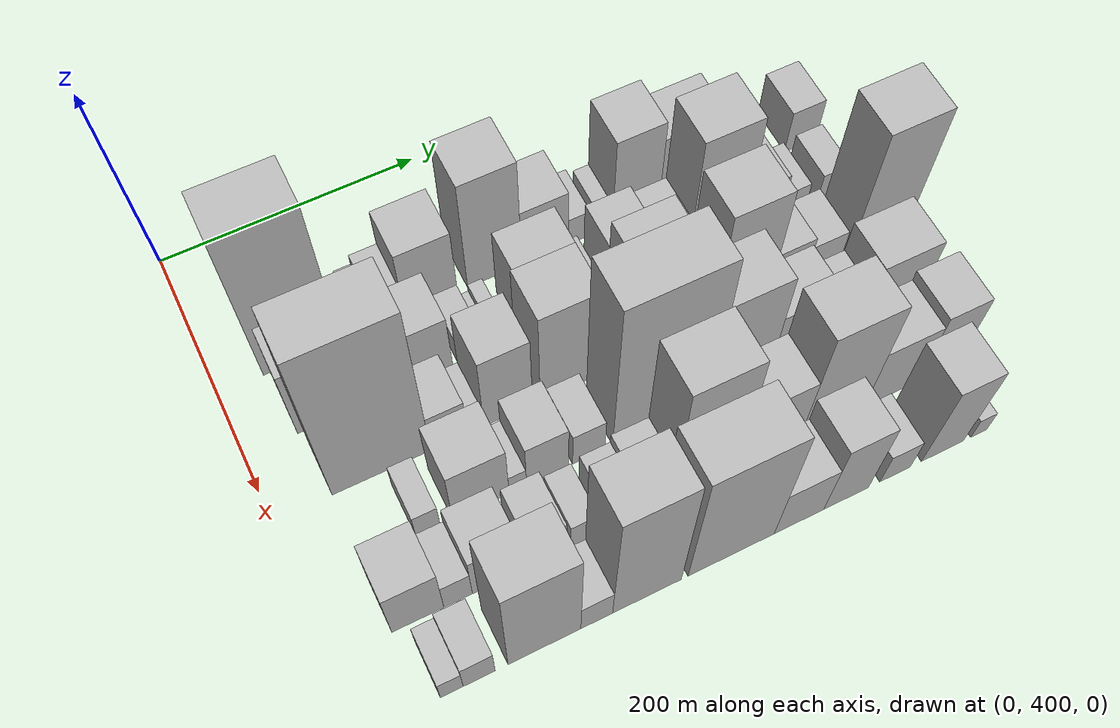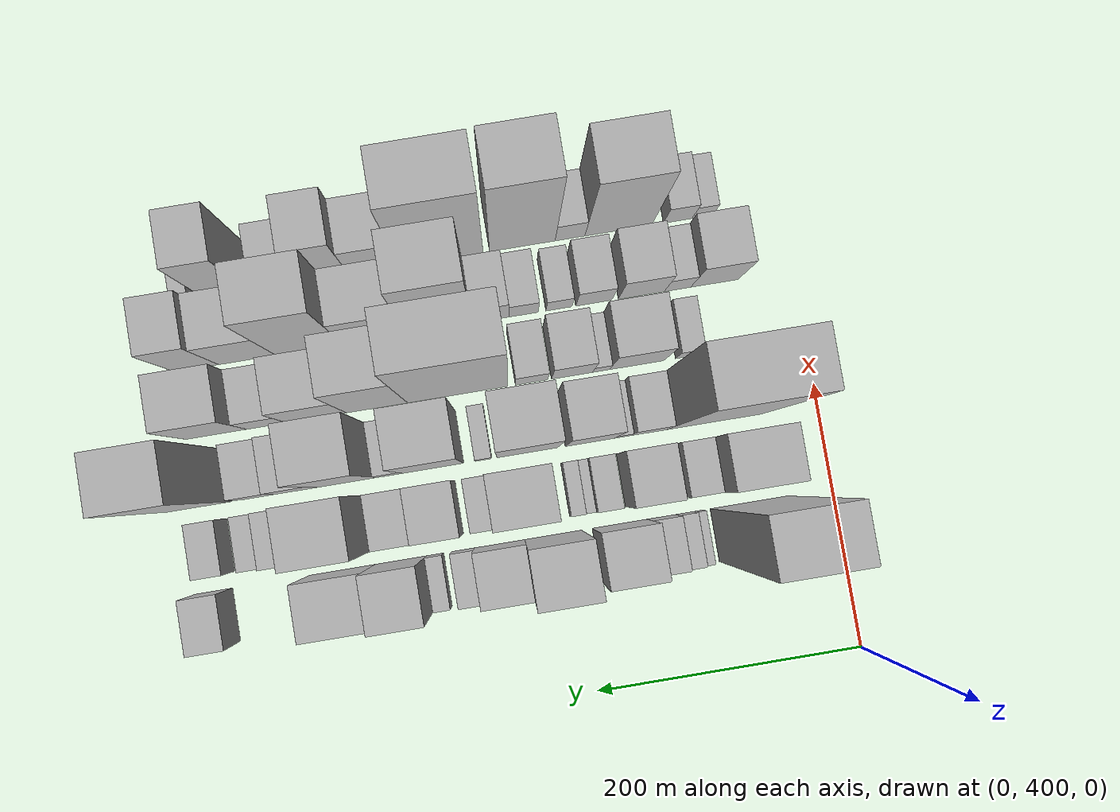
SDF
<sdf version="1.6">
 <world name="default">
  <model name="building_38">
   <static>1</static>
   <pose>100.0000 463.9945 0 0.000000 0.000000 0.000000</pose>
   <link name="link">
    <pose>0 0 90.00 0 0 0</pose>
    <collision name="collision"><geometry><box><size>40.0000 59.3825 180.0000</size></box></geometry></collision>
    <visual name="visual">
     <cast_shadows>0</cast_shadows>
     <geometry><box><size>40.0000 59.3825 180.0000</size></box></geometry>
     <material>
      <script>
       <uri>model://HANNAS_wall/materials/scripts</uri>
       <uri>model://HANNAS_wall/materials/textures</uri>
       <name>vrc/HANNAS_wall</name>
      </script>
     </material>
    </visual>
   </link>
  </model>
  <model name="building_39">
   <static>1</static>
   <pose>100.0000 503.4746 0 0.000000 0.000000 0.000000</pose>
   <link name="link">
    <pose>0 0 9.00 0 0 0</pose>
    <collision name="collision"><geometry><box><size>40.0000 7.5776 18.0000</size></box></geometry></collision>
    <visual name="visual">
     <cast_shadows>0</cast_shadows>
     <geometry><box><size>40.0000 7.5776 18.0000</size></box></geometry>
     <material>
      <script>
       <uri>model://HANNAS_wall/materials/scripts</uri>
       <uri>model://HANNAS_wall/materials/textures</uri>
       <name>vrc/HANNAS_wall</name>
      </script>
     </material>
    </visual>
   </link>
  </model>
  <model name="building_40">
   <static>1</static>
   <pose>100.0000 514.0020 0 0.000000 0.000000 0.000000</pose>
   <link name="link">
    <pose>0 0 13.50 0 0 0</pose>
    <collision name="collision"><geometry><box><size>40.0000 13.4772 27.0000</size></box></geometry></collision>
    <visual name="visual">
     <cast_shadows>0</cast_shadows>
     <geometry><box><size>40.0000 13.4772 27.0000</size></box></geometry>
     <material>
      <script>
       <uri>model://HANNAS_wall/materials/scripts</uri>
       <uri>model://HANNAS_wall/materials/textures</uri>
       <name>vrc/HANNAS_wall</name>
      </script>
     </material>
    </visual>
   </link>
  </model>
  <model name="building_41">
   <static>1</static>
   <pose>100.0000 531.4164 0 0.000000 0.000000 0.000000</pose>
   <link name="link">
    <pose>0 0 19.50 0 0 0</pose>
    <collision name="collision"><geometry><box><size>40.0000 21.3515 39.0000</size></box></geometry></collision>
    <visual name="visual">
     <cast_shadows>0</cast_shadows>
     <geometry><box><size>40.0000 21.3515 39.0000</size></box></geometry>
     <material>
      <script>
       <uri>model://HANNAS_wall/materials/scripts</uri>
       <uri>model://HANNAS_wall/materials/textures</uri>
       <name>vrc/HANNAS_wall</name>
      </script>
     </material>
    </visual>
   </link>
  </model>
  <model name="building_42">
   <static>1</static>
   <pose>100.0000 562.9155 0 0.000000 0.000000 0.000000</pose>
   <link name="link">
    <pose>0 0 40.50 0 0 0</pose>
    <collision name="collision"><geometry><box><size>40.0000 41.6467 81.0000</size></box></geometry></collision>
    <visual name="visual">
     <cast_shadows>0</cast_shadows>
     <geometry><box><size>40.0000 41.6467 81.0000</size></box></geometry>
     <material>
      <script>
       <uri>model://HANNAS_wall/materials/scripts</uri>
       <uri>model://HANNAS_wall/materials/textures</uri>
       <name>vrc/HANNAS_wall</name>
      </script>
     </material>
    </visual>
   </link>
  </model>
  <model name="building_43">
   <static>1</static>
   <pose>100.0000 613.4535 0 0.000000 0.000000 0.000000</pose>
   <link name="link">
    <pose>0 0 66.00 0 0 0</pose>
    <collision name="collision"><geometry><box><size>40.0000 43.4293 132.0000</size></box></geometry></collision>
    <visual name="visual">
     <cast_shadows>0</cast_shadows>
     <geometry><box><size>40.0000 43.4293 132.0000</size></box></geometry>
     <material>
      <script>
       <uri>model://HANNAS_wall/materials/scripts</uri>
       <uri>model://HANNAS_wall/materials/textures</uri>
       <name>vrc/HANNAS_wall</name>
      </script>
     </material>
    </visual>
   </link>
  </model>
  <model name="building_44">
   <static>1</static>
   <pose>100.0000 654.1920 0 0.000000 0.000000 0.000000</pose>
   <link name="link">
    <pose>0 0 34.50 0 0 0</pose>
    <collision name="collision"><geometry><box><size>40.0000 38.0477 69.0000</size></box></geometry></collision>
    <visual name="visual">
     <cast_shadows>0</cast_shadows>
     <geometry><box><size>40.0000 38.0477 69.0000</size></box></geometry>
     <material>
      <script>
       <uri>model://HANNAS_wall/materials/scripts</uri>
       <uri>model://HANNAS_wall/materials/textures</uri>
       <name>vrc/HANNAS_wall</name>
      </script>
     </material>
    </visual>
   </link>
  </model>
  <model name="building_45">
   <static>1</static>
   <pose>100.0000 681.9633 0 0.000000 0.000000 0.000000</pose>
   <link name="link">
    <pose>0 0 16.50 0 0 0</pose>
    <collision name="collision"><geometry><box><size>40.0000 17.4950 33.0000</size></box></geometry></collision>
    <visual name="visual">
     <cast_shadows>0</cast_shadows>
     <geometry><box><size>40.0000 17.4950 33.0000</size></box></geometry>
     <material>
      <script>
       <uri>model://HANNAS_wall/materials/scripts</uri>
       <uri>model://HANNAS_wall/materials/textures</uri>
       <name>vrc/HANNAS_wall</name>
      </script>
     </material>
    </visual>
   </link>
  </model>
  <model name="building_46">
   <static>1</static>
   <pose>100.0000 703.1020 0 0.000000 0.000000 0.000000</pose>
   <link name="link">
    <pose>0 0 13.50 0 0 0</pose>
    <collision name="collision"><geometry><box><size>40.0000 12.7823 27.0000</size></box></geometry></collision>
    <visual name="visual">
     <cast_shadows>0</cast_shadows>
     <geometry><box><size>40.0000 12.7823 27.0000</size></box></geometry>
     <material>
      <script>
       <uri>model://HANNAS_wall/materials/scripts</uri>
       <uri>model://HANNAS_wall/materials/textures</uri>
       <name>vrc/HANNAS_wall</name>
      </script>
     </material>
    </visual>
   </link>
  </model>
  <model name="building_47">
   <static>1</static>
   <pose>100.0000 728.9406 0 0.000000 0.000000 0.000000</pose>
   <link name="link">
    <pose>0 0 52.50 0 0 0</pose>
    <collision name="collision"><geometry><box><size>40.0000 38.8948 105.0000</size></box></geometry></collision>
    <visual name="visual">
     <cast_shadows>0</cast_shadows>
     <geometry><box><size>40.0000 38.8948 105.0000</size></box></geometry>
     <material>
      <script>
       <uri>model://HANNAS_wall/materials/scripts</uri>
       <uri>model://HANNAS_wall/materials/textures</uri>
       <name>vrc/HANNAS_wall</name>
      </script>
     </material>
    </visual>
   </link>
  </model>
  <model name="building_48">
   <static>1</static>
   <pose>100.0000 773.1806 0 0.000000 0.000000 0.000000</pose>
   <link name="link">
    <pose>0 0 42.00 0 0 0</pose>
    <collision name="collision"><geometry><box><size>40.0000 49.5852 84.0000</size></box></geometry></collision>
    <visual name="visual">
     <cast_shadows>0</cast_shadows>
     <geometry><box><size>40.0000 49.5852 84.0000</size></box></geometry>
     <material>
      <script>
       <uri>model://HANNAS_wall/materials/scripts</uri>
       <uri>model://HANNAS_wall/materials/textures</uri>
       <name>vrc/HANNAS_wall</name>
      </script>
     </material>
    </visual>
   </link>
  </model>
  <model name="building_49">
   <static>1</static>
   <pose>100.0000 870.8977 0 0.000000 0.000000 0.000000</pose>
   <link name="link">
    <pose>0 0 24.00 0 0 0</pose>
    <collision name="collision"><geometry><box><size>40.0000 27.9497 48.0000</size></box></geometry></collision>
    <visual name="visual">
     <cast_shadows>0</cast_shadows>
     <geometry><box><size>40.0000 27.9497 48.0000</size></box></geometry>
     <material>
      <script>
       <uri>model://HANNAS_wall/materials/scripts</uri>
       <uri>model://HANNAS_wall/materials/textures</uri>
       <name>vrc/HANNAS_wall</name>
      </script>
     </material>
    </visual>
   </link>
  </model>
  <model name="building_87">
   <static>1</static>
   <pose>152.0000 464.3282 0 0.000000 0.000000 0.000000</pose>
   <link name="link">
    <pose>0 0 43.50 0 0 0</pose>
    <collision name="collision"><geometry><box><size>40.0000 49.8847 87.0000</size></box></geometry></collision>
    <visual name="visual">
     <cast_shadows>0</cast_shadows>
     <geometry><box><size>40.0000 49.8847 87.0000</size></box></geometry>
     <material>
      <script>
       <uri>model://HANNAS_wall/materials/scripts</uri>
       <uri>model://HANNAS_wall/materials/textures</uri>
       <name>vrc/HANNAS_wall</name>
      </script>
     </material>
    </visual>
   </link>
  </model>
  <model name="building_88">
   <static>1</static>
   <pose>152.0000 501.3196 0 0.000000 0.000000 0.000000</pose>
   <link name="link">
    <pose>0 0 22.50 0 0 0</pose>
    <collision name="collision"><geometry><box><size>40.0000 24.0981 45.0000</size></box></geometry></collision>
    <visual name="visual">
     <cast_shadows>0</cast_shadows>
     <geometry><box><size>40.0000 24.0981 45.0000</size></box></geometry>
     <material>
      <script>
       <uri>model://HANNAS_wall/materials/scripts</uri>
       <uri>model://HANNAS_wall/materials/textures</uri>
       <name>vrc/HANNAS_wall</name>
      </script>
     </material>
    </visual>
   </link>
  </model>
  <model name="building_89">
   <static>1</static>
   <pose>152.0000 538.3576 0 0.000000 0.000000 0.000000</pose>
   <link name="link">
    <pose>0 0 34.50 0 0 0</pose>
    <collision name="collision"><geometry><box><size>40.0000 35.9779 69.0000</size></box></geometry></collision>
    <visual name="visual">
     <cast_shadows>0</cast_shadows>
     <geometry><box><size>40.0000 35.9779 69.0000</size></box></geometry>
     <material>
      <script>
       <uri>model://HANNAS_wall/materials/scripts</uri>
       <uri>model://HANNAS_wall/materials/textures</uri>
       <name>vrc/HANNAS_wall</name>
      </script>
     </material>
    </visual>
   </link>
  </model>
  <model name="building_90">
   <static>1</static>
   <pose>152.0000 570.0254 0 0.000000 0.000000 0.000000</pose>
   <link name="link">
    <pose>0 0 16.50 0 0 0</pose>
    <collision name="collision"><geometry><box><size>40.0000 19.3577 33.0000</size></box></geometry></collision>
    <visual name="visual">
     <cast_shadows>0</cast_shadows>
     <geometry><box><size>40.0000 19.3577 33.0000</size></box></geometry>
     <material>
      <script>
       <uri>model://HANNAS_wall/materials/scripts</uri>
       <uri>model://HANNAS_wall/materials/textures</uri>
       <name>vrc/HANNAS_wall</name>
      </script>
     </material>
    </visual>
   </link>
  </model>
  <model name="building_91">
   <static>1</static>
   <pose>152.0000 583.7149 0 0.000000 0.000000 0.000000</pose>
   <link name="link">
    <pose>0 0 9.00 0 0 0</pose>
    <collision name="collision"><geometry><box><size>40.0000 8.0212 18.0000</size></box></geometry></collision>
    <visual name="visual">
     <cast_shadows>0</cast_shadows>
     <geometry><box><size>40.0000 8.0212 18.0000</size></box></geometry>
     <material>
      <script>
       <uri>model://HANNAS_wall/materials/scripts</uri>
       <uri>model://HANNAS_wall/materials/textures</uri>
       <name>vrc/HANNAS_wall</name>
      </script>
     </material>
    </visual>
   </link>
  </model>
  <model name="building_92">
   <static>1</static>
   <pose>152.0000 593.3504 0 0.000000 0.000000 0.000000</pose>
   <link name="link">
    <pose>0 0 13.50 0 0 0</pose>
    <collision name="collision"><geometry><box><size>40.0000 11.2499 27.0000</size></box></geometry></collision>
    <visual name="visual">
     <cast_shadows>0</cast_shadows>
     <geometry><box><size>40.0000 11.2499 27.0000</size></box></geometry>
     <material>
      <script>
       <uri>model://HANNAS_wall/materials/scripts</uri>
       <uri>model://HANNAS_wall/materials/textures</uri>
       <name>vrc/HANNAS_wall</name>
      </script>
     </material>
    </visual>
   </link>
  </model>
  <model name="building_93">
   <static>1</static>
   <pose>152.0000 632.6060 0 0.000000 0.000000 0.000000</pose>
   <link name="link">
    <pose>0 0 40.50 0 0 0</pose>
    <collision name="collision"><geometry><box><size>40.0000 47.2612 81.0000</size></box></geometry></collision>
    <visual name="visual">
     <cast_shadows>0</cast_shadows>
     <geometry><box><size>40.0000 47.2612 81.0000</size></box></geometry>
     <material>
      <script>
       <uri>model://HANNAS_wall/materials/scripts</uri>
       <uri>model://HANNAS_wall/materials/textures</uri>
       <name>vrc/HANNAS_wall</name>
      </script>
     </material>
    </visual>
   </link>
  </model>
  <model name="building_94">
   <static>1</static>
   <pose>152.0000 664.9774 0 0.000000 0.000000 0.000000</pose>
   <link name="link">
    <pose>0 0 15.00 0 0 0</pose>
    <collision name="collision"><geometry><box><size>40.0000 17.4816 30.0000</size></box></geometry></collision>
    <visual name="visual">
     <cast_shadows>0</cast_shadows>
     <geometry><box><size>40.0000 17.4816 30.0000</size></box></geometry>
     <material>
      <script>
       <uri>model://HANNAS_wall/materials/scripts</uri>
       <uri>model://HANNAS_wall/materials/textures</uri>
       <name>vrc/HANNAS_wall</name>
      </script>
     </material>
    </visual>
   </link>
  </model>
  <model name="building_95">
   <static>1</static>
   <pose>152.0000 697.3945 0 0.000000 0.000000 0.000000</pose>
   <link name="link">
    <pose>0 0 33.00 0 0 0</pose>
    <collision name="collision"><geometry><box><size>40.0000 35.3527 66.0000</size></box></geometry></collision>
    <visual name="visual">
     <cast_shadows>0</cast_shadows>
     <geometry><box><size>40.0000 35.3527 66.0000</size></box></geometry>
     <material>
      <script>
       <uri>model://HANNAS_wall/materials/scripts</uri>
       <uri>model://HANNAS_wall/materials/textures</uri>
       <name>vrc/HANNAS_wall</name>
      </script>
     </material>
    </visual>
   </link>
  </model>
  <model name="building_96">
   <static>1</static>
   <pose>152.0000 729.4953 0 0.000000 0.000000 0.000000</pose>
   <link name="link">
    <pose>0 0 28.50 0 0 0</pose>
    <collision name="collision"><geometry><box><size>40.0000 28.8489 57.0000</size></box></geometry></collision>
    <visual name="visual">
     <cast_shadows>0</cast_shadows>
     <geometry><box><size>40.0000 28.8489 57.0000</size></box></geometry>
     <material>
      <script>
       <uri>model://HANNAS_wall/materials/scripts</uri>
       <uri>model://HANNAS_wall/materials/textures</uri>
       <name>vrc/HANNAS_wall</name>
      </script>
     </material>
    </visual>
   </link>
  </model>
  <model name="building_97">
   <static>1</static>
   <pose>152.0000 766.5316 0 0.000000 0.000000 0.000000</pose>
   <link name="link">
    <pose>0 0 75.00 0 0 0</pose>
    <collision name="collision"><geometry><box><size>40.0000 45.2237 150.0000</size></box></geometry></collision>
    <visual name="visual">
     <cast_shadows>0</cast_shadows>
     <geometry><box><size>40.0000 45.2237 150.0000</size></box></geometry>
     <material>
      <script>
       <uri>model://HANNAS_wall/materials/scripts</uri>
       <uri>model://HANNAS_wall/materials/textures</uri>
       <name>vrc/HANNAS_wall</name>
      </script>
     </material>
    </visual>
   </link>
  </model>
  <model name="building_98">
   <static>1</static>
   <pose>152.0000 805.8189 0 0.000000 0.000000 0.000000</pose>
   <link name="link">
    <pose>0 0 30.00 0 0 0</pose>
    <collision name="collision"><geometry><box><size>40.0000 33.3508 60.0000</size></box></geometry></collision>
    <visual name="visual">
     <cast_shadows>0</cast_shadows>
     <geometry><box><size>40.0000 33.3508 60.0000</size></box></geometry>
     <material>
      <script>
       <uri>model://HANNAS_wall/materials/scripts</uri>
       <uri>model://HANNAS_wall/materials/textures</uri>
       <name>vrc/HANNAS_wall</name>
      </script>
     </material>
    </visual>
   </link>
  </model>
  <model name="building_99">
   <static>1</static>
   <pose>152.0000 832.9193 0 0.000000 0.000000 0.000000</pose>
   <link name="link">
    <pose>0 0 18.00 0 0 0</pose>
    <collision name="collision"><geometry><box><size>40.0000 20.8501 36.0000</size></box></geometry></collision>
    <visual name="visual">
     <cast_shadows>0</cast_shadows>
     <geometry><box><size>40.0000 20.8501 36.0000</size></box></geometry>
     <material>
      <script>
       <uri>model://HANNAS_wall/materials/scripts</uri>
       <uri>model://HANNAS_wall/materials/textures</uri>
       <name>vrc/HANNAS_wall</name>
      </script>
     </material>
    </visual>
   </link>
  </model>
  <model name="building_100">
   <static>1</static>
   <pose>152.0000 864.4934 0 0.000000 0.000000 0.000000</pose>
   <link name="link">
    <pose>0 0 19.50 0 0 0</pose>
    <collision name="collision"><geometry><box><size>40.0000 22.2980 39.0000</size></box></geometry></collision>
    <visual name="visual">
     <cast_shadows>0</cast_shadows>
     <geometry><box><size>40.0000 22.2980 39.0000</size></box></geometry>
     <material>
      <script>
       <uri>model://HANNAS_wall/materials/scripts</uri>
       <uri>model://HANNAS_wall/materials/textures</uri>
       <name>vrc/HANNAS_wall</name>
      </script>
     </material>
    </visual>
   </link>
  </model>
  <model name="building_138">
   <static>1</static>
   <pose>204.0000 479.8969 0 0.000000 0.000000 0.000000</pose>
   <link name="link">
    <pose>0 0 100.50 0 0 0</pose>
    <collision name="collision"><geometry><box><size>40.0000 72.7157 201.0000</size></box></geometry></collision>
    <visual name="visual">
     <cast_shadows>0</cast_shadows>
     <geometry><box><size>40.0000 72.7157 201.0000</size></box></geometry>
     <material>
      <script>
       <uri>model://HANNAS_wall/materials/scripts</uri>
       <uri>model://HANNAS_wall/materials/textures</uri>
       <name>vrc/HANNAS_wall</name>
      </script>
     </material>
    </visual>
   </link>
  </model>
  <model name="building_139">
   <static>1</static>
   <pose>204.0000 530.0250 0 0.000000 0.000000 0.000000</pose>
   <link name="link">
    <pose>0 0 25.50 0 0 0</pose>
    <collision name="collision"><geometry><box><size>40.0000 27.5405 51.0000</size></box></geometry></collision>
    <visual name="visual">
     <cast_shadows>0</cast_shadows>
     <geometry><box><size>40.0000 27.5405 51.0000</size></box></geometry>
     <material>
      <script>
       <uri>model://HANNAS_wall/materials/scripts</uri>
       <uri>model://HANNAS_wall/materials/textures</uri>
       <name>vrc/HANNAS_wall</name>
      </script>
     </material>
    </visual>
   </link>
  </model>
  <model name="building_140">
   <static>1</static>
   <pose>204.0000 550.0132 0 0.000000 0.000000 0.000000</pose>
   <link name="link">
    <pose>0 0 13.50 0 0 0</pose>
    <collision name="collision"><geometry><box><size>40.0000 12.4360 27.0000</size></box></geometry></collision>
    <visual name="visual">
     <cast_shadows>0</cast_shadows>
     <geometry><box><size>40.0000 12.4360 27.0000</size></box></geometry>
     <material>
      <script>
       <uri>model://HANNAS_wall/materials/scripts</uri>
       <uri>model://HANNAS_wall/materials/textures</uri>
       <name>vrc/HANNAS_wall</name>
      </script>
     </material>
    </visual>
   </link>
  </model>
  <model name="building_141">
   <static>1</static>
   <pose>204.0000 574.8178 0 0.000000 0.000000 0.000000</pose>
   <link name="link">
    <pose>0 0 48.00 0 0 0</pose>
    <collision name="collision"><geometry><box><size>40.0000 37.1732 96.0000</size></box></geometry></collision>
    <visual name="visual">
     <cast_shadows>0</cast_shadows>
     <geometry><box><size>40.0000 37.1732 96.0000</size></box></geometry>
     <material>
      <script>
       <uri>model://HANNAS_wall/materials/scripts</uri>
       <uri>model://HANNAS_wall/materials/textures</uri>
       <name>vrc/HANNAS_wall</name>
      </script>
     </material>
    </visual>
   </link>
  </model>
  <model name="building_142">
   <static>1</static>
   <pose>204.0000 622.4602 0 0.000000 0.000000 0.000000</pose>
   <link name="link">
    <pose>0 0 60.00 0 0 0</pose>
    <collision name="collision"><geometry><box><size>40.0000 46.1114 120.0000</size></box></geometry></collision>
    <visual name="visual">
     <cast_shadows>0</cast_shadows>
     <geometry><box><size>40.0000 46.1114 120.0000</size></box></geometry>
     <material>
      <script>
       <uri>model://HANNAS_wall/materials/scripts</uri>
       <uri>model://HANNAS_wall/materials/textures</uri>
       <name>vrc/HANNAS_wall</name>
      </script>
     </material>
    </visual>
   </link>
  </model>
  <model name="building_143">
   <static>1</static>
   <pose>204.0000 655.7681 0 0.000000 0.000000 0.000000</pose>
   <link name="link">
    <pose>0 0 13.50 0 0 0</pose>
    <collision name="collision"><geometry><box><size>40.0000 12.5044 27.0000</size></box></geometry></collision>
    <visual name="visual">
     <cast_shadows>0</cast_shadows>
     <geometry><box><size>40.0000 12.5044 27.0000</size></box></geometry>
     <material>
      <script>
       <uri>model://HANNAS_wall/materials/scripts</uri>
       <uri>model://HANNAS_wall/materials/textures</uri>
       <name>vrc/HANNAS_wall</name>
      </script>
     </material>
    </visual>
   </link>
  </model>
  <model name="building_144">
   <static>1</static>
   <pose>204.0000 694.2369 0 0.000000 0.000000 0.000000</pose>
   <link name="link">
    <pose>0 0 63.00 0 0 0</pose>
    <collision name="collision"><geometry><box><size>40.0000 46.4333 126.0000</size></box></geometry></collision>
    <visual name="visual">
     <cast_shadows>0</cast_shadows>
     <geometry><box><size>40.0000 46.4333 126.0000</size></box></geometry>
     <material>
      <script>
       <uri>model://HANNAS_wall/materials/scripts</uri>
       <uri>model://HANNAS_wall/materials/textures</uri>
       <name>vrc/HANNAS_wall</name>
      </script>
     </material>
    </visual>
   </link>
  </model>
  <model name="building_145">
   <static>1</static>
   <pose>204.0000 727.0333 0 0.000000 0.000000 0.000000</pose>
   <link name="link">
    <pose>0 0 18.00 0 0 0</pose>
    <collision name="collision"><geometry><box><size>40.0000 19.1595 36.0000</size></box></geometry></collision>
    <visual name="visual">
     <cast_shadows>0</cast_shadows>
     <geometry><box><size>40.0000 19.1595 36.0000</size></box></geometry>
     <material>
      <script>
       <uri>model://HANNAS_wall/materials/scripts</uri>
       <uri>model://HANNAS_wall/materials/textures</uri>
       <name>vrc/HANNAS_wall</name>
      </script>
     </material>
    </visual>
   </link>
  </model>
  <model name="building_146">
   <static>1</static>
   <pose>204.0000 759.2634 0 0.000000 0.000000 0.000000</pose>
   <link name="link">
    <pose>0 0 70.50 0 0 0</pose>
    <collision name="collision"><geometry><box><size>40.0000 45.3006 141.0000</size></box></geometry></collision>
    <visual name="visual">
     <cast_shadows>0</cast_shadows>
     <geometry><box><size>40.0000 45.3006 141.0000</size></box></geometry>
     <material>
      <script>
       <uri>model://HANNAS_wall/materials/scripts</uri>
       <uri>model://HANNAS_wall/materials/textures</uri>
       <name>vrc/HANNAS_wall</name>
      </script>
     </material>
    </visual>
   </link>
  </model>
  <model name="building_147">
   <static>1</static>
   <pose>204.0000 797.0327 0 0.000000 0.000000 0.000000</pose>
   <link name="link">
    <pose>0 0 30.00 0 0 0</pose>
    <collision name="collision"><geometry><box><size>40.0000 30.2379 60.0000</size></box></geometry></collision>
    <visual name="visual">
     <cast_shadows>0</cast_shadows>
     <geometry><box><size>40.0000 30.2379 60.0000</size></box></geometry>
     <material>
      <script>
       <uri>model://HANNAS_wall/materials/scripts</uri>
       <uri>model://HANNAS_wall/materials/textures</uri>
       <name>vrc/HANNAS_wall</name>
      </script>
     </material>
    </visual>
   </link>
  </model>
  <model name="building_148">
   <static>1</static>
   <pose>204.0000 826.4240 0 0.000000 0.000000 0.000000</pose>
   <link name="link">
    <pose>0 0 24.00 0 0 0</pose>
    <collision name="collision"><geometry><box><size>40.0000 28.5447 48.0000</size></box></geometry></collision>
    <visual name="visual">
     <cast_shadows>0</cast_shadows>
     <geometry><box><size>40.0000 28.5447 48.0000</size></box></geometry>
     <material>
      <script>
       <uri>model://HANNAS_wall/materials/scripts</uri>
       <uri>model://HANNAS_wall/materials/textures</uri>
       <name>vrc/HANNAS_wall</name>
      </script>
     </material>
    </visual>
   </link>
  </model>
  <model name="building_149">
   <static>1</static>
   <pose>204.0000 871.9807 0 0.000000 0.000000 0.000000</pose>
   <link name="link">
    <pose>0 0 79.50 0 0 0</pose>
    <collision name="collision"><geometry><box><size>40.0000 48.5687 159.0000</size></box></geometry></collision>
    <visual name="visual">
     <cast_shadows>0</cast_shadows>
     <geometry><box><size>40.0000 48.5687 159.0000</size></box></geometry>
     <material>
      <script>
       <uri>model://HANNAS_wall/materials/scripts</uri>
       <uri>model://HANNAS_wall/materials/textures</uri>
       <name>vrc/HANNAS_wall</name>
      </script>
     </material>
    </visual>
   </link>
  </model>
  <model name="building_182">
   <static>1</static>
   <pose>256.0000 491.0594 0 0.000000 0.000000 0.000000</pose>
   <link name="link">
    <pose>0 0 16.50 0 0 0</pose>
    <collision name="collision"><geometry><box><size>40.0000 17.6833 33.0000</size></box></geometry></collision>
    <visual name="visual">
     <cast_shadows>0</cast_shadows>
     <geometry><box><size>40.0000 17.6833 33.0000</size></box></geometry>
     <material>
      <script>
       <uri>model://HANNAS_wall/materials/scripts</uri>
       <uri>model://HANNAS_wall/materials/textures</uri>
       <name>vrc/HANNAS_wall</name>
      </script>
     </material>
    </visual>
   </link>
  </model>
  <model name="building_183">
   <static>1</static>
   <pose>256.0000 529.7799 0 0.000000 0.000000 0.000000</pose>
   <link name="link">
    <pose>0 0 36.00 0 0 0</pose>
    <collision name="collision"><geometry><box><size>40.0000 41.7577 72.0000</size></box></geometry></collision>
    <visual name="visual">
     <cast_shadows>0</cast_shadows>
     <geometry><box><size>40.0000 41.7577 72.0000</size></box></geometry>
     <material>
      <script>
       <uri>model://HANNAS_wall/materials/scripts</uri>
       <uri>model://HANNAS_wall/materials/textures</uri>
       <name>vrc/HANNAS_wall</name>
      </script>
     </material>
    </visual>
   </link>
  </model>
  <model name="building_184">
   <static>1</static>
   <pose>256.0000 557.2018 0 0.000000 0.000000 0.000000</pose>
   <link name="link">
    <pose>0 0 13.50 0 0 0</pose>
    <collision name="collision"><geometry><box><size>40.0000 13.0862 27.0000</size></box></geometry></collision>
    <visual name="visual">
     <cast_shadows>0</cast_shadows>
     <geometry><box><size>40.0000 13.0862 27.0000</size></box></geometry>
     <material>
      <script>
       <uri>model://HANNAS_wall/materials/scripts</uri>
       <uri>model://HANNAS_wall/materials/textures</uri>
       <name>vrc/HANNAS_wall</name>
      </script>
     </material>
    </visual>
   </link>
  </model>
  <model name="building_185">
   <static>1</static>
   <pose>256.0000 579.5460 0 0.000000 0.000000 0.000000</pose>
   <link name="link">
    <pose>0 0 30.00 0 0 0</pose>
    <collision name="collision"><geometry><box><size>40.0000 31.6020 60.0000</size></box></geometry></collision>
    <visual name="visual">
     <cast_shadows>0</cast_shadows>
     <geometry><box><size>40.0000 31.6020 60.0000</size></box></geometry>
     <material>
      <script>
       <uri>model://HANNAS_wall/materials/scripts</uri>
       <uri>model://HANNAS_wall/materials/textures</uri>
       <name>vrc/HANNAS_wall</name>
      </script>
     </material>
    </visual>
   </link>
  </model>
  <model name="building_186">
   <static>1</static>
   <pose>256.0000 610.6677 0 0.000000 0.000000 0.000000</pose>
   <link name="link">
    <pose>0 0 22.50 0 0 0</pose>
    <collision name="collision"><geometry><box><size>40.0000 24.6415 45.0000</size></box></geometry></collision>
    <visual name="visual">
     <cast_shadows>0</cast_shadows>
     <geometry><box><size>40.0000 24.6415 45.0000</size></box></geometry>
     <material>
      <script>
       <uri>model://HANNAS_wall/materials/scripts</uri>
       <uri>model://HANNAS_wall/materials/textures</uri>
       <name>vrc/HANNAS_wall</name>
      </script>
     </material>
    </visual>
   </link>
  </model>
  <model name="building_187">
   <static>1</static>
   <pose>256.0000 667.2887 0 0.000000 0.000000 0.000000</pose>
   <link name="link">
    <pose>0 0 97.50 0 0 0</pose>
    <collision name="collision"><geometry><box><size>40.0000 76.6004 195.0000</size></box></geometry></collision>
    <visual name="visual">
     <cast_shadows>0</cast_shadows>
     <geometry><box><size>40.0000 76.6004 195.0000</size></box></geometry>
     <material>
      <script>
       <uri>model://HANNAS_wall/materials/scripts</uri>
       <uri>model://HANNAS_wall/materials/textures</uri>
       <name>vrc/HANNAS_wall</name>
      </script>
     </material>
    </visual>
   </link>
  </model>
  <model name="building_188">
   <static>1</static>
   <pose>256.0000 728.9497 0 0.000000 0.000000 0.000000</pose>
   <link name="link">
    <pose>0 0 67.50 0 0 0</pose>
    <collision name="collision"><geometry><box><size>40.0000 46.7217 135.0000</size></box></geometry></collision>
    <visual name="visual">
     <cast_shadows>0</cast_shadows>
     <geometry><box><size>40.0000 46.7217 135.0000</size></box></geometry>
     <material>
      <script>
       <uri>model://HANNAS_wall/materials/scripts</uri>
       <uri>model://HANNAS_wall/materials/textures</uri>
       <name>vrc/HANNAS_wall</name>
      </script>
     </material>
    </visual>
   </link>
  </model>
  <model name="building_189">
   <static>1</static>
   <pose>256.0000 775.1195 0 0.000000 0.000000 0.000000</pose>
   <link name="link">
    <pose>0 0 40.50 0 0 0</pose>
    <collision name="collision"><geometry><box><size>40.0000 45.6178 81.0000</size></box></geometry></collision>
    <visual name="visual">
     <cast_shadows>0</cast_shadows>
     <geometry><box><size>40.0000 45.6178 81.0000</size></box></geometry>
     <material>
      <script>
       <uri>model://HANNAS_wall/materials/scripts</uri>
       <uri>model://HANNAS_wall/materials/textures</uri>
       <name>vrc/HANNAS_wall</name>
      </script>
     </material>
    </visual>
   </link>
  </model>
  <model name="building_190">
   <static>1</static>
   <pose>256.0000 813.1176 0 0.000000 0.000000 0.000000</pose>
   <link name="link">
    <pose>0 0 25.50 0 0 0</pose>
    <collision name="collision"><geometry><box><size>40.0000 30.3784 51.0000</size></box></geometry></collision>
    <visual name="visual">
     <cast_shadows>0</cast_shadows>
     <geometry><box><size>40.0000 30.3784 51.0000</size></box></geometry>
     <material>
      <script>
       <uri>model://HANNAS_wall/materials/scripts</uri>
       <uri>model://HANNAS_wall/materials/textures</uri>
       <name>vrc/HANNAS_wall</name>
      </script>
     </material>
    </visual>
   </link>
  </model>
  <model name="building_191">
   <static>1</static>
   <pose>256.0000 851.7511 0 0.000000 0.000000 0.000000</pose>
   <link name="link">
    <pose>0 0 43.50 0 0 0</pose>
    <collision name="collision"><geometry><box><size>40.0000 46.8887 87.0000</size></box></geometry></collision>
    <visual name="visual">
     <cast_shadows>0</cast_shadows>
     <geometry><box><size>40.0000 46.8887 87.0000</size></box></geometry>
     <material>
      <script>
       <uri>model://HANNAS_wall/materials/scripts</uri>
       <uri>model://HANNAS_wall/materials/textures</uri>
       <name>vrc/HANNAS_wall</name>
      </script>
     </material>
    </visual>
   </link>
  </model>
  <model name="building_227">
   <static>1</static>
   <pose>308.0000 460.7086 0 0.000000 0.000000 0.000000</pose>
   <link name="link">
    <pose>0 0 33.00 0 0 0</pose>
    <collision name="collision"><geometry><box><size>40.0000 36.7809 66.0000</size></box></geometry></collision>
    <visual name="visual">
     <cast_shadows>0</cast_shadows>
     <geometry><box><size>40.0000 36.7809 66.0000</size></box></geometry>
     <material>
      <script>
       <uri>model://HANNAS_wall/materials/scripts</uri>
       <uri>model://HANNAS_wall/materials/textures</uri>
       <name>vrc/HANNAS_wall</name>
      </script>
     </material>
    </visual>
   </link>
  </model>
  <model name="building_228">
   <static>1</static>
   <pose>308.0000 489.2787 0 0.000000 0.000000 0.000000</pose>
   <link name="link">
    <pose>0 0 19.50 0 0 0</pose>
    <collision name="collision"><geometry><box><size>40.0000 20.3594 39.0000</size></box></geometry></collision>
    <visual name="visual">
     <cast_shadows>0</cast_shadows>
     <geometry><box><size>40.0000 20.3594 39.0000</size></box></geometry>
     <material>
      <script>
       <uri>model://HANNAS_wall/materials/scripts</uri>
       <uri>model://HANNAS_wall/materials/textures</uri>
       <name>vrc/HANNAS_wall</name>
      </script>
     </material>
    </visual>
   </link>
  </model>
  <model name="building_229">
   <static>1</static>
   <pose>308.0000 517.2668 0 0.000000 0.000000 0.000000</pose>
   <link name="link">
    <pose>0 0 30.00 0 0 0</pose>
    <collision name="collision"><geometry><box><size>40.0000 35.6167 60.0000</size></box></geometry></collision>
    <visual name="visual">
     <cast_shadows>0</cast_shadows>
     <geometry><box><size>40.0000 35.6167 60.0000</size></box></geometry>
     <material>
      <script>
       <uri>model://HANNAS_wall/materials/scripts</uri>
       <uri>model://HANNAS_wall/materials/textures</uri>
       <name>vrc/HANNAS_wall</name>
      </script>
     </material>
    </visual>
   </link>
  </model>
  <model name="building_230">
   <static>1</static>
   <pose>308.0000 553.9937 0 0.000000 0.000000 0.000000</pose>
   <link name="link">
    <pose>0 0 24.00 0 0 0</pose>
    <collision name="collision"><geometry><box><size>40.0000 27.8372 48.0000</size></box></geometry></collision>
    <visual name="visual">
     <cast_shadows>0</cast_shadows>
     <geometry><box><size>40.0000 27.8372 48.0000</size></box></geometry>
     <material>
      <script>
       <uri>model://HANNAS_wall/materials/scripts</uri>
       <uri>model://HANNAS_wall/materials/textures</uri>
       <name>vrc/HANNAS_wall</name>
      </script>
     </material>
    </visual>
   </link>
  </model>
  <model name="building_231">
   <static>1</static>
   <pose>308.0000 580.9225 0 0.000000 0.000000 0.000000</pose>
   <link name="link">
    <pose>0 0 18.00 0 0 0</pose>
    <collision name="collision"><geometry><box><size>40.0000 20.0204 36.0000</size></box></geometry></collision>
    <visual name="visual">
     <cast_shadows>0</cast_shadows>
     <geometry><box><size>40.0000 20.0204 36.0000</size></box></geometry>
     <material>
      <script>
       <uri>model://HANNAS_wall/materials/scripts</uri>
       <uri>model://HANNAS_wall/materials/textures</uri>
       <name>vrc/HANNAS_wall</name>
      </script>
     </material>
    </visual>
   </link>
  </model>
  <model name="building_232">
   <static>1</static>
   <pose>308.0000 608.1858 0 0.000000 0.000000 0.000000</pose>
   <link name="link">
    <pose>0 0 21.00 0 0 0</pose>
    <collision name="collision"><geometry><box><size>40.0000 22.5063 42.0000</size></box></geometry></collision>
    <visual name="visual">
     <cast_shadows>0</cast_shadows>
     <geometry><box><size>40.0000 22.5063 42.0000</size></box></geometry>
     <material>
      <script>
       <uri>model://HANNAS_wall/materials/scripts</uri>
       <uri>model://HANNAS_wall/materials/textures</uri>
       <name>vrc/HANNAS_wall</name>
      </script>
     </material>
    </visual>
   </link>
  </model>
  <model name="building_233">
   <static>1</static>
   <pose>308.0000 633.3446 0 0.000000 0.000000 0.000000</pose>
   <link name="link">
    <pose>0 0 27.00 0 0 0</pose>
    <collision name="collision"><geometry><box><size>40.0000 27.8111 54.0000</size></box></geometry></collision>
    <visual name="visual">
     <cast_shadows>0</cast_shadows>
     <geometry><box><size>40.0000 27.8111 54.0000</size></box></geometry>
     <material>
      <script>
       <uri>model://HANNAS_wall/materials/scripts</uri>
       <uri>model://HANNAS_wall/materials/textures</uri>
       <name>vrc/HANNAS_wall</name>
      </script>
     </material>
    </visual>
   </link>
  </model>
  <model name="building_234">
   <static>1</static>
   <pose>308.0000 672.3225 0 0.000000 0.000000 0.000000</pose>
   <link name="link">
    <pose>0 0 82.50 0 0 0</pose>
    <collision name="collision"><geometry><box><size>40.0000 50.1447 165.0000</size></box></geometry></collision>
    <visual name="visual">
     <cast_shadows>0</cast_shadows>
     <geometry><box><size>40.0000 50.1447 165.0000</size></box></geometry>
     <material>
      <script>
       <uri>model://HANNAS_wall/materials/scripts</uri>
       <uri>model://HANNAS_wall/materials/textures</uri>
       <name>vrc/HANNAS_wall</name>
      </script>
     </material>
    </visual>
   </link>
  </model>
  <model name="building_235">
   <static>1</static>
   <pose>308.0000 721.9718 0 0.000000 0.000000 0.000000</pose>
   <link name="link">
    <pose>0 0 43.50 0 0 0</pose>
    <collision name="collision"><geometry><box><size>40.0000 49.1540 87.0000</size></box></geometry></collision>
    <visual name="visual">
     <cast_shadows>0</cast_shadows>
     <geometry><box><size>40.0000 49.1540 87.0000</size></box></geometry>
     <material>
      <script>
       <uri>model://HANNAS_wall/materials/scripts</uri>
       <uri>model://HANNAS_wall/materials/textures</uri>
       <name>vrc/HANNAS_wall</name>
      </script>
     </material>
    </visual>
   </link>
  </model>
  <model name="building_236">
   <static>1</static>
   <pose>308.0000 772.4573 0 0.000000 0.000000 0.000000</pose>
   <link name="link">
    <pose>0 0 73.50 0 0 0</pose>
    <collision name="collision"><geometry><box><size>40.0000 51.8170 147.0000</size></box></geometry></collision>
    <visual name="visual">
     <cast_shadows>0</cast_shadows>
     <geometry><box><size>40.0000 51.8170 147.0000</size></box></geometry>
     <material>
      <script>
       <uri>model://HANNAS_wall/materials/scripts</uri>
       <uri>model://HANNAS_wall/materials/textures</uri>
       <name>vrc/HANNAS_wall</name>
      </script>
     </material>
    </visual>
   </link>
  </model>
  <model name="building_237">
   <static>1</static>
   <pose>308.0000 820.2965 0 0.000000 0.000000 0.000000</pose>
   <link name="link">
    <pose>0 0 40.50 0 0 0</pose>
    <collision name="collision"><geometry><box><size>40.0000 43.8615 81.0000</size></box></geometry></collision>
    <visual name="visual">
     <cast_shadows>0</cast_shadows>
     <geometry><box><size>40.0000 43.8615 81.0000</size></box></geometry>
     <material>
      <script>
       <uri>model://HANNAS_wall/materials/scripts</uri>
       <uri>model://HANNAS_wall/materials/textures</uri>
       <name>vrc/HANNAS_wall</name>
      </script>
     </material>
    </visual>
   </link>
  </model>
  <model name="building_238">
   <static>1</static>
   <pose>308.0000 858.9936 0 0.000000 0.000000 0.000000</pose>
   <link name="link">
    <pose>0 0 46.50 0 0 0</pose>
    <collision name="collision"><geometry><box><size>40.0000 33.5327 93.0000</size></box></geometry></collision>
    <visual name="visual">
     <cast_shadows>0</cast_shadows>
     <geometry><box><size>40.0000 33.5327 93.0000</size></box></geometry>
     <material>
      <script>
       <uri>model://HANNAS_wall/materials/scripts</uri>
       <uri>model://HANNAS_wall/materials/textures</uri>
       <name>vrc/HANNAS_wall</name>
      </script>
     </material>
    </visual>
   </link>
  </model>
  <model name="building_276">
   <static>1</static>
   <pose>360.0000 461.0705 0 0.000000 0.000000 0.000000</pose>
   <link name="link">
    <pose>0 0 15.00 0 0 0</pose>
    <collision name="collision"><geometry><box><size>40.0000 15.8174 30.0000</size></box></geometry></collision>
    <visual name="visual">
     <cast_shadows>0</cast_shadows>
     <geometry><box><size>40.0000 15.8174 30.0000</size></box></geometry>
     <material>
      <script>
       <uri>model://HANNAS_wall/materials/scripts</uri>
       <uri>model://HANNAS_wall/materials/textures</uri>
       <name>vrc/HANNAS_wall</name>
      </script>
     </material>
    </visual>
   </link>
  </model>
  <model name="building_277">
   <static>1</static>
   <pose>360.0000 480.1354 0 0.000000 0.000000 0.000000</pose>
   <link name="link">
    <pose>0 0 19.50 0 0 0</pose>
    <collision name="collision"><geometry><box><size>40.0000 22.3124 39.0000</size></box></geometry></collision>
    <visual name="visual">
     <cast_shadows>0</cast_shadows>
     <geometry><box><size>40.0000 22.3124 39.0000</size></box></geometry>
     <material>
      <script>
       <uri>model://HANNAS_wall/materials/scripts</uri>
       <uri>model://HANNAS_wall/materials/textures</uri>
       <name>vrc/HANNAS_wall</name>
      </script>
     </material>
    </visual>
   </link>
  </model>
  <model name="building_278">
   <static>1</static>
   <pose>360.0000 526.1942 0 0.000000 0.000000 0.000000</pose>
   <link name="link">
    <pose>0 0 69.00 0 0 0</pose>
    <collision name="collision"><geometry><box><size>40.0000 51.8053 138.0000</size></box></geometry></collision>
    <visual name="visual">
     <cast_shadows>0</cast_shadows>
     <geometry><box><size>40.0000 51.8053 138.0000</size></box></geometry>
     <material>
      <script>
       <uri>model://HANNAS_wall/materials/scripts</uri>
       <uri>model://HANNAS_wall/materials/textures</uri>
       <name>vrc/HANNAS_wall</name>
      </script>
     </material>
    </visual>
   </link>
  </model>
  <model name="building_279">
   <static>1</static>
   <pose>360.0000 563.5837 0 0.000000 0.000000 0.000000</pose>
   <link name="link">
    <pose>0 0 21.00 0 0 0</pose>
    <collision name="collision"><geometry><box><size>40.0000 22.9737 42.0000</size></box></geometry></collision>
    <visual name="visual">
     <cast_shadows>0</cast_shadows>
     <geometry><box><size>40.0000 22.9737 42.0000</size></box></geometry>
     <material>
      <script>
       <uri>model://HANNAS_wall/materials/scripts</uri>
       <uri>model://HANNAS_wall/materials/textures</uri>
       <name>vrc/HANNAS_wall</name>
      </script>
     </material>
    </visual>
   </link>
  </model>
  <model name="building_280">
   <static>1</static>
   <pose>360.0000 600.3872 0 0.000000 0.000000 0.000000</pose>
   <link name="link">
    <pose>0 0 84.00 0 0 0</pose>
    <collision name="collision"><geometry><box><size>40.0000 50.6334 168.0000</size></box></geometry></collision>
    <visual name="visual">
     <cast_shadows>0</cast_shadows>
     <geometry><box><size>40.0000 50.6334 168.0000</size></box></geometry>
     <material>
      <script>
       <uri>model://HANNAS_wall/materials/scripts</uri>
       <uri>model://HANNAS_wall/materials/textures</uri>
       <name>vrc/HANNAS_wall</name>
      </script>
     </material>
    </visual>
   </link>
  </model>
  <model name="building_281">
   <static>1</static>
   <pose>360.0000 663.2865 0 0.000000 0.000000 0.000000</pose>
   <link name="link">
    <pose>0 0 82.50 0 0 0</pose>
    <collision name="collision"><geometry><box><size>40.0000 65.1650 165.0000</size></box></geometry></collision>
    <visual name="visual">
     <cast_shadows>0</cast_shadows>
     <geometry><box><size>40.0000 65.1650 165.0000</size></box></geometry>
     <material>
      <script>
       <uri>model://HANNAS_wall/materials/scripts</uri>
       <uri>model://HANNAS_wall/materials/textures</uri>
       <name>vrc/HANNAS_wall</name>
      </script>
     </material>
    </visual>
   </link>
  </model>
  <model name="building_282">
   <static>1</static>
   <pose>360.0000 715.0542 0 0.000000 0.000000 0.000000</pose>
   <link name="link">
    <pose>0 0 34.50 0 0 0</pose>
    <collision name="collision"><geometry><box><size>40.0000 38.3704 69.0000</size></box></geometry></collision>
    <visual name="visual">
     <cast_shadows>0</cast_shadows>
     <geometry><box><size>40.0000 38.3704 69.0000</size></box></geometry>
     <material>
      <script>
       <uri>model://HANNAS_wall/materials/scripts</uri>
       <uri>model://HANNAS_wall/materials/textures</uri>
       <name>vrc/HANNAS_wall</name>
      </script>
     </material>
    </visual>
   </link>
  </model>
  <model name="building_283">
   <static>1</static>
   <pose>360.0000 751.7856 0 0.000000 0.000000 0.000000</pose>
   <link name="link">
    <pose>0 0 49.50 0 0 0</pose>
    <collision name="collision"><geometry><box><size>40.0000 35.0925 99.0000</size></box></geometry></collision>
    <visual name="visual">
     <cast_shadows>0</cast_shadows>
     <geometry><box><size>40.0000 35.0925 99.0000</size></box></geometry>
     <material>
      <script>
       <uri>model://HANNAS_wall/materials/scripts</uri>
       <uri>model://HANNAS_wall/materials/textures</uri>
       <name>vrc/HANNAS_wall</name>
      </script>
     </material>
    </visual>
   </link>
  </model>
  <model name="building_284">
   <static>1</static>
   <pose>360.0000 790.4868 0 0.000000 0.000000 0.000000</pose>
   <link name="link">
    <pose>0 0 21.00 0 0 0</pose>
    <collision name="collision"><geometry><box><size>40.0000 24.3099 42.0000</size></box></geometry></collision>
    <visual name="visual">
     <cast_shadows>0</cast_shadows>
     <geometry><box><size>40.0000 24.3099 42.0000</size></box></geometry>
     <material>
      <script>
       <uri>model://HANNAS_wall/materials/scripts</uri>
       <uri>model://HANNAS_wall/materials/textures</uri>
       <name>vrc/HANNAS_wall</name>
      </script>
     </material>
    </visual>
   </link>
  </model>
  <model name="building_285">
   <static>1</static>
   <pose>360.0000 828.6297 0 0.000000 0.000000 0.000000</pose>
   <link name="link">
    <pose>0 0 54.00 0 0 0</pose>
    <collision name="collision"><geometry><box><size>40.0000 33.9760 108.0000</size></box></geometry></collision>
    <visual name="visual">
     <cast_shadows>0</cast_shadows>
     <geometry><box><size>40.0000 33.9760 108.0000</size></box></geometry>
     <material>
      <script>
       <uri>model://HANNAS_wall/materials/scripts</uri>
       <uri>model://HANNAS_wall/materials/textures</uri>
       <name>vrc/HANNAS_wall</name>
      </script>
     </material>
    </visual>
   </link>
  </model>
  <model name="building_286">
   <static>1</static>
   <pose>360.0000 858.2340 0 0.000000 0.000000 0.000000</pose>
   <link name="link">
    <pose>0 0 13.50 0 0 0</pose>
    <collision name="collision"><geometry><box><size>40.0000 13.2327 27.0000</size></box></geometry></collision>
    <visual name="visual">
     <cast_shadows>0</cast_shadows>
     <geometry><box><size>40.0000 13.2327 27.0000</size></box></geometry>
     <material>
      <script>
       <uri>model://HANNAS_wall/materials/scripts</uri>
       <uri>model://HANNAS_wall/materials/textures</uri>
       <name>vrc/HANNAS_wall</name>
      </script>
     </material>
    </visual>
   </link>
  </model>
 </world>
</sdf>
